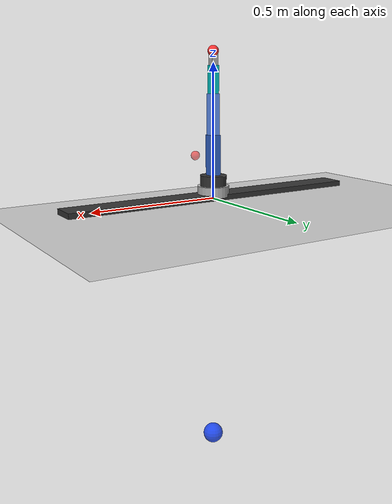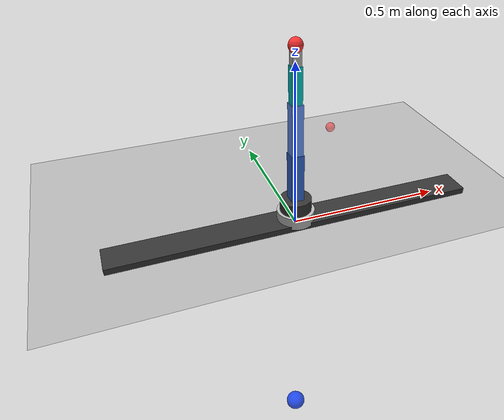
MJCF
<!--
  simple_arm.xml  -  6-DOF robot arm model for MuJoCo (Linear Slide + 5-DOF Arm)
-->
<mujoco model="simple_arm">

  <option timestep="0.005" gravity="0 0 -9.81" solver="Newton" iterations="50"/>

  <default>
    <joint damping="0.5" armature="0.01"/>
    <geom contype="1" conaffinity="1" condim="3"
          material="mat_default" friction="0.7 0.005 0.0001"/>
  </default>

  <asset>
    <material name="mat_base"    rgba="0.2 0.2 0.2 1"/>
    <material name="mat_link1"   rgba="0.2 0.4 0.8 1"/>
    <material name="mat_link2"   rgba="0.4 0.6 1.0 1"/>
    <material name="mat_link3"   rgba="0.0 0.8 0.8 1"/>
    <material name="mat_ee"      rgba="1.0 0.2 0.2 1"/>
    <material name="mat_default" rgba="0.7 0.7 0.7 1"/>
    <material name="mat_floor"   rgba="0.5 0.5 0.5 1" reflectance="0.2"/>
  </asset>

  <worldbody>
    <light diffuse=".9 .9 .9" pos="0 0 3" dir="0 0 -1" castshadow="false"/>
    <light diffuse=".4 .4 .4" pos="2 2 2" dir="-1 -1 -1"/>

    <!-- Floor -->
    <geom name="floor" type="plane" size="2 2 0.01" material="mat_floor" pos="0 0 0"/>

    <!-- Target Marker -->
    <body name="target" pos="0.2 0.2 0.2" mocap="true">
      <geom name="target_geom" type="sphere" size="0.015" rgba="1 0 0 0.5" contype="0" conaffinity="0"/>
    </body>
<!-- Obstacle Marker (Visualization only, hidden by default) -->
<body name="obstacle" pos="0 0 -1" mocap="true">
  <geom name="obstacle_geom" type="sphere" size="0.04"
        rgba="0 0.2 1 0.8" contype="0" conaffinity="0"/>
</body>

    <!-- Rail -->
    <geom name="rail_geom" type="box" size="0.6 0.05 0.01" pos="0 0 0.01" material="mat_base"/>

    <!-- Linear Slider -->
    <body name="slider" pos="0 0 0.02">
      <joint name="base_rail" type="slide" axis="1 0 0" range="-0.5 0.5"/>
      <geom name="slider_geom" type="cylinder" size="0.06 0.02" pos="0 0 0.01" material="mat_default"/>

      <!-- Arm Base attached to slider -->
      <body name="base" pos="0 0 0.02">
        <geom name="base_geom" type="cylinder" size="0.05 0.025" pos="0 0 0.025" material="mat_base"/>

        <!-- Link 1 -->
        <body name="link1" pos="0 0 0.05">
          <joint name="shoulder_pan" type="hinge" axis="0 0 1" range="-180 180" pos="0 0 0"/>
          <geom name="link1_geom" type="box" size="0.02 0.02 0.075" pos="0 0 0.075" material="mat_link1"/>

          <!-- Link 2 -->
          <body name="link2" pos="0 0 0.15">
            <joint name="shoulder_lift" type="hinge" axis="0 1 0" range="-90 90" pos="0 0 0"/>
            <geom name="link2_geom" type="box" size="0.0175 0.0175 0.075" pos="0 0 0.075" material="mat_link2"/>

            <!-- Link 3 -->
            <body name="link3" pos="0 0 0.15">
              <joint name="elbow" type="hinge" axis="0 1 0" range="-90 90" pos="0 0 0"/>
              <geom name="link3_geom" type="box" size="0.015 0.015 0.05" pos="0 0 0.05" material="mat_link3"/>

              <!-- Link 4 -->
              <body name="link4" pos="0 0 0.10">
                <joint name="wrist_pitch" type="hinge" axis="0 1 0" range="-90 90" pos="0 0 0"/>
                <geom name="link4_geom" type="box" size="0.0125 0.0125 0.025" pos="0 0 0.025" material="mat_default"/>

                <!-- EE -->
                <body name="end_effector" pos="0 0 0.05">
                  <joint name="wrist_roll" type="hinge" axis="0 0 1" range="-180 180" pos="0 0 0"/>
                  <geom name="ee_geom" type="sphere" size="0.02" material="mat_ee"/>
                  <site name="ee_site" pos="0 0 0" size="0.01" rgba="1 1 0 1" type="sphere"/>
                </body>
              </body>
            </body>
          </body>
        </body>
      </body>
    </body>
  </worldbody>

  <actuator>
    <position name="act_base_rail"     joint="base_rail"     kp="200" kv="20" ctrlrange="-0.5 0.5" ctrllimited="true"/>
    <position name="act_shoulder_pan"  joint="shoulder_pan"  kp="50"  kv="5"  ctrlrange="-3.14 3.14" ctrllimited="true"/>
    <position name="act_shoulder_lift" joint="shoulder_lift" kp="50"  kv="5"  ctrlrange="-1.57 1.57" ctrllimited="true"/>
    <position name="act_elbow"         joint="elbow"         kp="40"  kv="4"  ctrlrange="-1.57 1.57" ctrllimited="true"/>
    <position name="act_wrist_pitch"   joint="wrist_pitch"   kp="30"  kv="3"  ctrlrange="-1.57 1.57" ctrllimited="true"/>
    <position name="act_wrist_roll"    joint="wrist_roll"    kp="20"  kv="2"  ctrlrange="-3.14 3.14" ctrllimited="true"/>
  </actuator>

  <sensor>
    <jointpos name="sensor_base_rail"     joint="base_rail"/>
    <jointpos name="sensor_shoulder_pan"  joint="shoulder_pan"/>
    <jointpos name="sensor_shoulder_lift" joint="shoulder_lift"/>
    <jointpos name="sensor_elbow"         joint="elbow"/>
    <jointpos name="sensor_wrist_pitch"   joint="wrist_pitch"/>
    <jointpos name="sensor_wrist_roll"    joint="wrist_roll"/>
  </sensor>

</mujoco>
